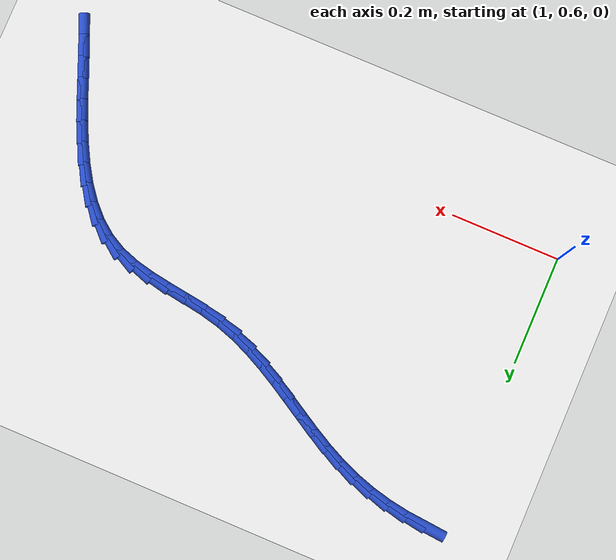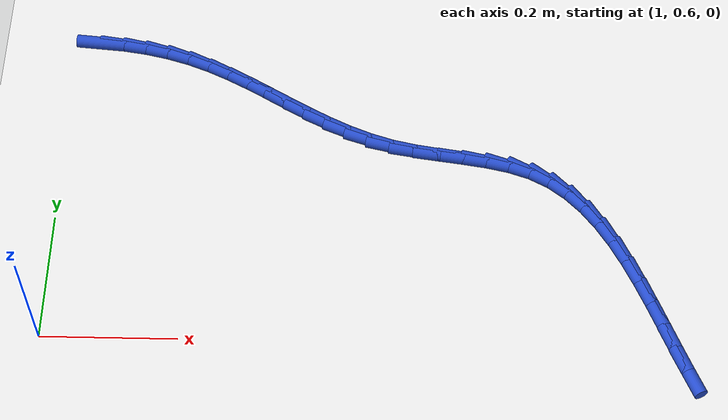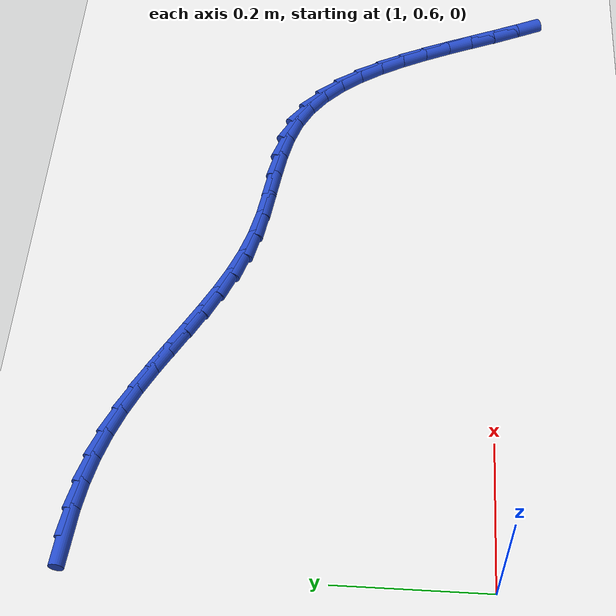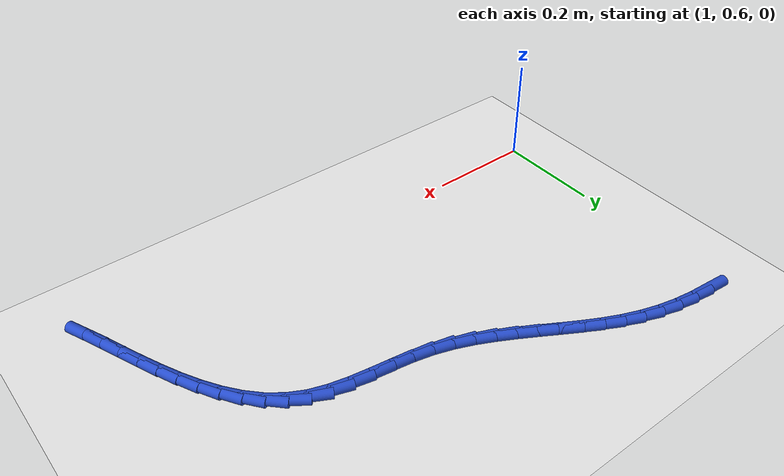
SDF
<sdf version="1.6">
 <world name="default">
  <model name="ground_plane">
   <static>1</static>
   <link name="link">
    <collision name="collision">
     <geometry><plane><normal>0 0 1</normal><size>100 100</size></plane></geometry>
     <surface><friction><ode><mu>100</mu><mu2>50</mu2></ode></friction></surface>
    </collision>
    <visual name="visual">
     <cast_shadows>0</cast_shadows>
     <geometry><plane><normal>0 0 1</normal><size>100 100</size></plane></geometry>
     <material>
      <script><uri>file://media/materials/scripts/gazebo.material</uri><name>Gazebo/WhiteGlow</name></script>
     </material>
    </visual>
   </link>
  </model>
  <model name="line">
   <link name="link_46">
    <pose>1.0387221721722624 1.1217490001680355 0.01 0 1.57 -0.09160789442999658</pose>
    <collision name="collision">
     <geometry><cylinder><radius>0.01</radius><length>0.08</length></cylinder></geometry>
    </collision>
    <visual name="visual">
     <material>
      <script><name>Gazebo/Blue</name><uri>file://media/materials/scripts/gazebo.material</uri></script>
     </material>
     <geometry><cylinder><radius>0.01</radius><length>0.08</length></cylinder></geometry>
    </visual>
   </link>
   <link name="link_47">
    <pose>1.075205834883107 1.118397427924719 0.01 0 1.57 -0.16010462466605127</pose>
    <collision name="collision">
     <geometry><cylinder><radius>0.01</radius><length>0.08</length></cylinder></geometry>
    </collision>
    <visual name="visual">
     <material>
      <script><name>Gazebo/Blue</name><uri>file://media/materials/scripts/gazebo.material</uri></script>
     </material>
     <geometry><cylinder><radius>0.01</radius><length>0.08</length></cylinder></geometry>
    </visual>
   </link>
   <link name="link_48">
    <pose>1.1112134063471428 1.112582680001528 0.01 0 1.57 -0.23146718941003985</pose>
    <collision name="collision">
     <geometry><cylinder><radius>0.01</radius><length>0.08</length></cylinder></geometry>
    </collision>
    <visual name="visual">
     <material>
      <script><name>Gazebo/Blue</name><uri>file://media/materials/scripts/gazebo.material</uri></script>
     </material>
     <geometry><cylinder><radius>0.01</radius><length>0.08</length></cylinder></geometry>
    </visual>
   </link>
   <link name="link_49">
    <pose>1.1465249741275252 1.1042600428963245 0.01 0 1.57 -0.3062345435214308</pose>
    <collision name="collision">
     <geometry><cylinder><radius>0.01</radius><length>0.08</length></cylinder></geometry>
    </collision>
    <visual name="visual">
     <material>
      <script><name>Gazebo/Blue</name><uri>file://media/materials/scripts/gazebo.material</uri></script>
     </material>
     <geometry><cylinder><radius>0.01</radius><length>0.08</length></cylinder></geometry>
    </visual>
   </link>
   <link name="link_50">
    <pose>1.1809206257874103 1.0933848031069704 0.01 0 1.57 -0.3833064386205607</pose>
    <collision name="collision">
     <geometry><cylinder><radius>0.01</radius><length>0.08</length></cylinder></geometry>
    </collision>
    <visual name="visual">
     <material>
      <script><name>Gazebo/Blue</name><uri>file://media/materials/scripts/gazebo.material</uri></script>
     </material>
     <geometry><cylinder><radius>0.01</radius><length>0.08</length></cylinder></geometry>
    </visual>
   </link>
   <link name="link_51">
    <pose>1.214215871334835 1.0799584380103464 0.01 0 1.57 -0.4492917388914051</pose>
    <collision name="collision">
     <geometry><cylinder><radius>0.01</radius><length>0.08</length></cylinder></geometry>
    </collision>
    <visual name="visual">
     <material>
      <script><name>Gazebo/Blue</name><uri>file://media/materials/scripts/gazebo.material</uri></script>
     </material>
     <geometry><cylinder><radius>0.01</radius><length>0.08</length></cylinder></geometry>
    </visual>
   </link>
   <link name="link_52">
    <pose>1.2465292156130734 1.0643775303416616 0.01 0 1.57 -0.496903094330329</pose>
    <collision name="collision">
     <geometry><cylinder><radius>0.01</radius><length>0.08</length></cylinder></geometry>
    </collision>
    <visual name="visual">
     <material>
      <script><name>Gazebo/Blue</name><uri>file://media/materials/scripts/gazebo.material</uri></script>
     </material>
     <geometry><cylinder><radius>0.01</radius><length>0.08</length></cylinder></geometry>
    </visual>
   </link>
   <link name="link_53">
    <pose>1.2781329503566745 1.0472392009896412 0.01 0 1.57 -0.5260598898519439</pose>
    <collision name="collision">
     <geometry><cylinder><radius>0.01</radius><length>0.08</length></cylinder></geometry>
    </collision>
    <visual name="visual">
     <material>
      <script><name>Gazebo/Blue</name><uri>file://media/materials/scripts/gazebo.material</uri></script>
     </material>
     <geometry><cylinder><radius>0.01</radius><length>0.08</length></cylinder></geometry>
    </visual>
   </link>
   <link name="link_54">
    <pose>1.3093005733941907 1.0291421435899613 0.01 0 1.57 -0.5369519230182085</pose>
    <collision name="collision">
     <geometry><cylinder><radius>0.01</radius><length>0.08</length></cylinder></geometry>
    </collision>
    <visual name="visual">
     <material>
      <script><name>Gazebo/Blue</name><uri>file://media/materials/scripts/gazebo.material</uri></script>
     </material>
     <geometry><cylinder><radius>0.01</radius><length>0.08</length></cylinder></geometry>
    </visual>
   </link>
   <link name="link_55">
    <pose>1.3403055825541745 1.0106850517782975 0.01 0 1.57 -0.5296913512938771</pose>
    <collision name="collision">
     <geometry><cylinder><radius>0.01</radius><length>0.08</length></cylinder></geometry>
    </collision>
    <visual name="visual">
     <material>
      <script><name>Gazebo/Blue</name><uri>file://media/materials/scripts/gazebo.material</uri></script>
     </material>
     <geometry><cylinder><radius>0.01</radius><length>0.08</length></cylinder></geometry>
    </visual>
   </link>
   <link name="link_56">
    <pose>1.3714214756651772 0.992466619190326 0.01 0 1.57 -0.5042053317994968</pose>
    <collision name="collision">
     <geometry><cylinder><radius>0.01</radius><length>0.08</length></cylinder></geometry>
    </collision>
    <visual name="visual">
     <material>
      <script><name>Gazebo/Blue</name><uri>file://media/materials/scripts/gazebo.material</uri></script>
     </material>
     <geometry><cylinder><radius>0.01</radius><length>0.08</length></cylinder></geometry>
    </visual>
   </link>
   <link name="link_57">
    <pose>1.4029217505557507 0.9750855394617219 0.01 0 1.57 -0.4603074326827278</pose>
    <collision name="collision">
     <geometry><cylinder><radius>0.01</radius><length>0.08</length></cylinder></geometry>
    </collision>
    <visual name="visual">
     <material>
      <script><name>Gazebo/Blue</name><uri>file://media/materials/scripts/gazebo.material</uri></script>
     </material>
     <geometry><cylinder><radius>0.01</radius><length>0.08</length></cylinder></geometry>
    </visual>
   </link>
   <link name="link_58">
    <pose>1.4350799050544485 0.9591405062281617 0.01 0 1.57 -0.3979539377048277</pose>
    <collision name="collision">
     <geometry><cylinder><radius>0.01</radius><length>0.08</length></cylinder></geometry>
    </collision>
    <visual name="visual">
     <material>
      <script><name>Gazebo/Blue</name><uri>file://media/materials/scripts/gazebo.material</uri></script>
     </material>
     <geometry><cylinder><radius>0.01</radius><length>0.08</length></cylinder></geometry>
    </visual>
   </link>
   <link name="link_59">
    <pose>1.4681694369898206 0.9452302131253209 0.01 0 1.57 -0.31768760493813436</pose>
    <collision name="collision">
     <geometry><cylinder><radius>0.01</radius><length>0.08</length></cylinder></geometry>
    </collision>
    <visual name="visual">
     <material>
      <script><name>Gazebo/Blue</name><uri>file://media/materials/scripts/gazebo.material</uri></script>
     </material>
     <geometry><cylinder><radius>0.01</radius><length>0.08</length></cylinder></geometry>
    </visual>
   </link>
   <link name="link_60">
    <pose>1.5024638441904203 0.9339533537888753 0.01 0 1.57 -0.22659293655149187</pose>
    <collision name="collision">
     <geometry><cylinder><radius>0.01</radius><length>0.08</length></cylinder></geometry>
    </collision>
    <visual name="visual">
     <material>
      <script><name>Gazebo/Blue</name><uri>file://media/materials/scripts/gazebo.material</uri></script>
     </material>
     <geometry><cylinder><radius>0.01</radius><length>0.08</length></cylinder></geometry>
    </visual>
   </link>
   <link name="link_61">
    <pose>1.5381406811920082 0.925727974682842 0.01 0 1.57 -0.16328388565466856</pose>
    <collision name="collision">
     <geometry><cylinder><radius>0.01</radius><length>0.08</length></cylinder></geometry>
    </collision>
    <visual name="visual">
     <material>
      <script><name>Gazebo/Blue</name><uri>file://media/materials/scripts/gazebo.material</uri></script>
     </material>
     <geometry><cylinder><radius>0.01</radius><length>0.08</length></cylinder></geometry>
    </visual>
   </link>
   <link name="link_62">
    <pose>1.5747040624362523 0.9197041331837316 0.01 0 1.57 -0.14129249210785605</pose>
    <collision name="collision">
     <geometry><cylinder><radius>0.01</radius><length>0.08</length></cylinder></geometry>
    </collision>
    <visual name="visual">
     <material>
      <script><name>Gazebo/Blue</name><uri>file://media/materials/scripts/gazebo.material</uri></script>
     </material>
     <geometry><cylinder><radius>0.01</radius><length>0.08</length></cylinder></geometry>
    </visual>
   </link>
   <link name="link_63">
    <pose>1.6113696678114675 0.9144888066386327 0.01 0 1.57 -0.15986665288799948</pose>
    <collision name="collision">
     <geometry><cylinder><radius>0.01</radius><length>0.08</length></cylinder></geometry>
    </collision>
    <visual name="visual">
     <material>
      <script><name>Gazebo/Blue</name><uri>file://media/materials/scripts/gazebo.material</uri></script>
     </material>
     <geometry><cylinder><radius>0.01</radius><length>0.08</length></cylinder></geometry>
    </visual>
   </link>
   <link name="link_64">
    <pose>1.6473520804167625 0.9086869073011572 0.01 0 1.57 -0.22180952474324808</pose>
    <collision name="collision">
     <geometry><cylinder><radius>0.01</radius><length>0.08</length></cylinder></geometry>
    </collision>
    <visual name="visual">
     <material>
      <script><name>Gazebo/Blue</name><uri>file://media/materials/scripts/gazebo.material</uri></script>
     </material>
     <geometry><cylinder><radius>0.01</radius><length>0.08</length></cylinder></geometry>
    </visual>
   </link>
   <link name="link_65">
    <pose>1.6818658833512459 0.900903347424918 0.01 0 1.57 -0.33306332196200183</pose>
    <collision name="collision">
     <geometry><cylinder><radius>0.01</radius><length>0.08</length></cylinder></geometry>
    </collision>
    <visual name="visual">
     <material>
      <script><name>Gazebo/Blue</name><uri>file://media/materials/scripts/gazebo.material</uri></script>
     </material>
     <geometry><cylinder><radius>0.01</radius><length>0.08</length></cylinder></geometry>
    </visual>
   </link>
   <link name="link_66">
    <pose>1.7141256597140246 0.8897430392635272 0.01 0 1.57 -0.49444775255299706</pose>
    <collision name="collision">
     <geometry><cylinder><radius>0.01</radius><length>0.08</length></cylinder></geometry>
    </collision>
    <visual name="visual">
     <material>
      <script><name>Gazebo/Blue</name><uri>file://media/materials/scripts/gazebo.material</uri></script>
     </material>
     <geometry><cylinder><radius>0.01</radius><length>0.08</length></cylinder></geometry>
    </visual>
   </link>
   <link name="link_67">
    <pose>1.7434229790423919 0.8739484172507914 0.01 0 1.57 -0.6610888295441877</pose>
    <collision name="collision">
     <geometry><cylinder><radius>0.01</radius><length>0.08</length></cylinder></geometry>
    </collision>
    <visual name="visual">
     <material>
      <script><name>Gazebo/Blue</name><uri>file://media/materials/scripts/gazebo.material</uri></script>
     </material>
     <geometry><cylinder><radius>0.01</radius><length>0.08</length></cylinder></geometry>
    </visual>
   </link>
   <link name="link_68">
    <pose>1.7697330455553666 0.8534831040467317 0.01 0 1.57 -0.8036020463479708</pose>
    <collision name="collision">
     <geometry><cylinder><radius>0.01</radius><length>0.08</length></cylinder></geometry>
    </collision>
    <visual name="visual">
     <material>
      <script><name>Gazebo/Blue</name><uri>file://media/materials/scripts/gazebo.material</uri></script>
     </material>
     <geometry><cylinder><radius>0.01</radius><length>0.08</length></cylinder></geometry>
    </visual>
   </link>
   <link name="link_69">
    <pose>1.7933888976616876 0.8289499275932236 0.01 0 1.57 -0.9194911484500002</pose>
    <collision name="collision">
     <geometry><cylinder><radius>0.01</radius><length>0.08</length></cylinder></geometry>
    </collision>
    <visual name="visual">
     <material>
      <script><name>Gazebo/Blue</name><uri>file://media/materials/scripts/gazebo.material</uri></script>
     </material>
     <geometry><cylinder><radius>0.01</radius><length>0.08</length></cylinder></geometry>
    </visual>
   </link>
   <link name="link_70">
    <pose>1.8147267097135023 0.8009573176210436 0.01 0 1.57 -1.0103645549570934</pose>
    <collision name="collision">
     <geometry><cylinder><radius>0.01</radius><length>0.08</length></cylinder></geometry>
    </collision>
    <visual name="visual">
     <material>
      <script><name>Gazebo/Blue</name><uri>file://media/materials/scripts/gazebo.material</uri></script>
     </material>
     <geometry><cylinder><radius>0.01</radius><length>0.08</length></cylinder></geometry>
    </visual>
   </link>
   <link name="link_71">
    <pose>1.83408265606296 0.7701137038609666 0.01 0 1.57 -1.0793274649284685</pose>
    <collision name="collision">
     <geometry><cylinder><radius>0.01</radius><length>0.08</length></cylinder></geometry>
    </collision>
    <visual name="visual">
     <material>
      <script><name>Gazebo/Blue</name><uri>file://media/materials/scripts/gazebo.material</uri></script>
     </material>
     <geometry><cylinder><radius>0.01</radius><length>0.08</length></cylinder></geometry>
    </visual>
   </link>
   <link name="link_72">
    <pose>1.851792911062209 0.7370275160437688 0.01 0 1.57 -1.129498499853494</pose>
    <collision name="collision">
     <geometry><cylinder><radius>0.01</radius><length>0.08</length></cylinder></geometry>
    </collision>
    <visual name="visual">
     <material>
      <script><name>Gazebo/Blue</name><uri>file://media/materials/scripts/gazebo.material</uri></script>
     </material>
     <geometry><cylinder><radius>0.01</radius><length>0.08</length></cylinder></geometry>
    </visual>
   </link>
   <link name="link_73">
    <pose>1.868193649063398 0.7023071839002264 0.01 0 1.57 -1.1633628400867397</pose>
    <collision name="collision">
     <geometry><cylinder><radius>0.01</radius><length>0.08</length></cylinder></geometry>
    </collision>
    <visual name="visual">
     <material>
      <script><name>Gazebo/Blue</name><uri>file://media/materials/scripts/gazebo.material</uri></script>
     </material>
     <geometry><cylinder><radius>0.01</radius><length>0.08</length></cylinder></geometry>
    </visual>
   </link>
   <link name="link_74">
    <pose>1.8836210444186765 0.6665611371611151 0.01 0 1.57 -1.1825691221283763</pose>
    <collision name="collision">
     <geometry><cylinder><radius>0.01</radius><length>0.08</length></cylinder></geometry>
    </collision>
    <visual name="visual">
     <material>
      <script><name>Gazebo/Blue</name><uri>file://media/materials/scripts/gazebo.material</uri></script>
     </material>
     <geometry><cylinder><radius>0.01</radius><length>0.08</length></cylinder></geometry>
    </visual>
   </link>
   <link name="link_75">
    <pose>1.8984112714801926 0.6303978055572107 0.01 0 1.57 -1.1878871887179925</pose>
    <collision name="collision">
     <geometry><cylinder><radius>0.01</radius><length>0.08</length></cylinder></geometry>
    </collision>
    <visual name="visual">
     <material>
      <script><name>Gazebo/Blue</name><uri>file://media/materials/scripts/gazebo.material</uri></script>
     </material>
     <geometry><cylinder><radius>0.01</radius><length>0.08</length></cylinder></geometry>
    </visual>
   </link>
   <link name="link_76">
    <pose>1.9129005046000946 0.5944256188192893 0.01 0 1.57 -1.1794074864211042</pose>
    <collision name="collision">
     <geometry><cylinder><radius>0.01</radius><length>0.08</length></cylinder></geometry>
    </collision>
    <visual name="visual">
     <material>
      <script><name>Gazebo/Blue</name><uri>file://media/materials/scripts/gazebo.material</uri></script>
     </material>
     <geometry><cylinder><radius>0.01</radius><length>0.08</length></cylinder></geometry>
    </visual>
   </link>
   <link name="link_77">
    <pose>1.9274194943292438 0.5592433648589696 0.01 0 1.57 -1.164846038699034</pose>
    <collision name="collision">
     <geometry><cylinder><radius>0.01</radius><length>0.08</length></cylinder></geometry>
    </collision>
    <visual name="visual">
     <material>
      <script><name>Gazebo/Blue</name><uri>file://media/materials/scripts/gazebo.material</uri></script>
     </material>
     <geometry><cylinder><radius>0.01</radius><length>0.08</length></cylinder></geometry>
    </visual>
   </link>
  </model>
 </world>
</sdf>
